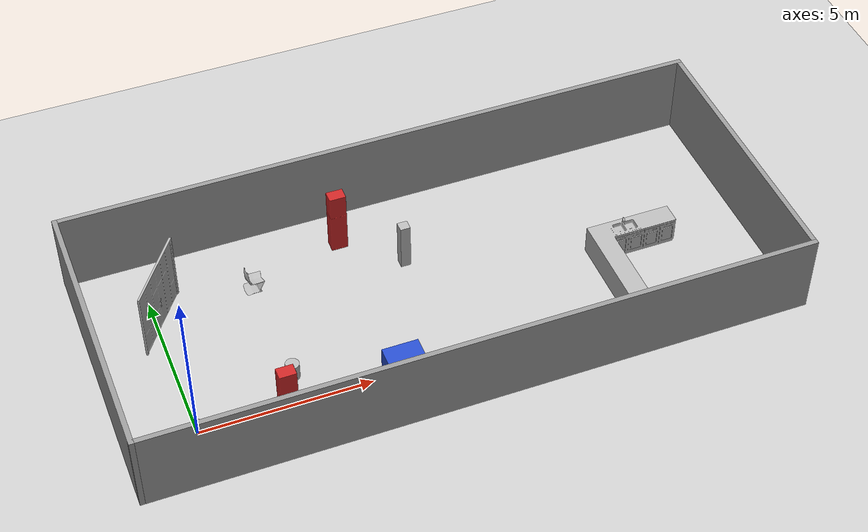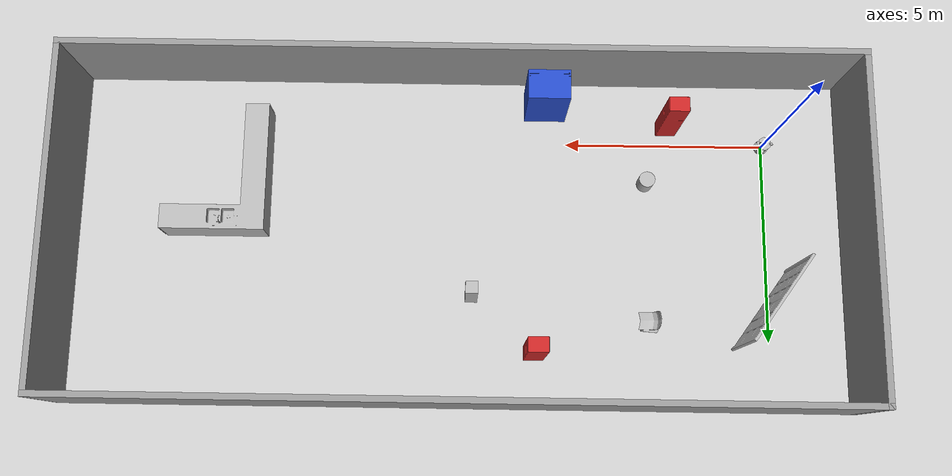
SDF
<sdf version="1.6">
 <world name="default">
  <light name="sun" type="directional">
   <pose>0 0 10 0 -0 0</pose>
   <diffuse>0.8 0.8 0.8 1</diffuse>
   <specular>0.2 0.2 0.2 1</specular>
   <attenuation>
    <range>1000</range>
    <constant>0.9</constant>
    <linear>0.01</linear>
    <quadratic>0.001</quadratic>
   </attenuation>
   <direction>-0.5 0.1 -0.9</direction>
  </light>
  <model name="ground_plane">
   <static>1</static>
   <link name="link">
    <collision name="collision">
     <geometry><plane><normal>0 0 1</normal><size>100 100</size></plane></geometry>
     <surface><friction><ode><mu>100</mu><mu2>50</mu2></ode></friction></surface>
    </collision>
    <visual name="visual">
     <cast_shadows>0</cast_shadows>
     <geometry><plane><normal>0 0 1</normal><size>100 100</size></plane></geometry>
     <material>
      <script><uri>file://media/materials/scripts/gazebo.material</uri><name>Gazebo/Grey</name></script>
     </material>
    </visual>
   </link>
  </model>
  <gravity>0 0 -9.8</gravity>
  <magnetic_field>6e-06 2.3e-05 -4.2e-05</magnetic_field>
  <atmosphere type="adiabatic"/>
  <physics name="default_physics" default="0" type="ode">
   <max_step_size>0.001</max_step_size>
   <real_time_factor>1</real_time_factor>
   <real_time_update_rate>1000</real_time_update_rate>
  </physics>
  <scene><ambient>0.4 0.4 0.4 1</ambient><background>0.7 0.7 0.7 1</background><shadows>1</shadows></scene>
  <audio><device>default</device></audio>
  <spherical_coordinates>
   <surface_model>EARTH_WGS84</surface_model>
   <latitude_deg>0</latitude_deg>
   <longitude_deg>0</longitude_deg>
   <elevation>0</elevation>
   <heading_deg>0</heading_deg>
  </spherical_coordinates>
  <model name="Untitled">
   <pose>7.69646 2.48369 0 0 -0 0</pose>
   <link name="Wall_4">
    <collision name="Wall_4_Collision">
     <geometry><box><size>19.5 0.15 2.5</size></box></geometry>
     <pose>0 0 1.25 0 -0 0</pose>
    </collision>
    <visual name="Wall_4_Visual">
     <pose>0 0 1.25 0 -0 0</pose>
     <geometry><box><size>19.5 0.15 2.5</size></box></geometry>
     <material>
      <script><uri>file://media/materials/scripts/gazebo.material</uri><name>Gazebo/Grey</name></script>
      <ambient>1 1 1 1</ambient>
     </material>
     <meta><layer>0</layer></meta>
    </visual>
    <pose>-0 4.175 0 0 -0 0</pose>
   </link>
   <link name="Wall_5">
    <collision name="Wall_5_Collision">
     <geometry><box><size>8.5 0.15 2.5</size></box></geometry>
     <pose>0 0 1.25 0 -0 0</pose>
    </collision>
    <visual name="Wall_5_Visual">
     <pose>0 0 1.25 0 -0 0</pose>
     <geometry><box><size>8.5 0.15 2.5</size></box></geometry>
     <material>
      <script><uri>file://media/materials/scripts/gazebo.material</uri><name>Gazebo/Grey</name></script>
      <ambient>1 1 1 1</ambient>
     </material>
     <meta><layer>0</layer></meta>
    </visual>
    <pose>9.675 0 0 0 -0 -1.5708</pose>
   </link>
   <link name="Wall_6">
    <collision name="Wall_6_Collision">
     <geometry><box><size>19.5 0.15 2.5</size></box></geometry>
     <pose>0 0 1.25 0 -0 0</pose>
    </collision>
    <visual name="Wall_6_Visual">
     <pose>0 0 1.25 0 -0 0</pose>
     <geometry><box><size>19.5 0.15 2.5</size></box></geometry>
     <material>
      <script><uri>file://media/materials/scripts/gazebo.material</uri><name>Gazebo/Grey</name></script>
      <ambient>1 1 1 1</ambient>
     </material>
     <meta><layer>0</layer></meta>
    </visual>
    <pose>-0 -4.175 0 0 -0 3.14159</pose>
   </link>
   <link name="Wall_7">
    <collision name="Wall_7_Collision">
     <geometry><box><size>8.5 0.15 2.5</size></box></geometry>
     <pose>0 0 1.25 0 -0 0</pose>
    </collision>
    <visual name="Wall_7_Visual">
     <pose>0 0 1.25 0 -0 0</pose>
     <geometry><box><size>8.5 0.15 2.5</size></box></geometry>
     <material>
      <script><uri>file://media/materials/scripts/gazebo.material</uri><name>Gazebo/Grey</name></script>
      <ambient>1 1 1 1</ambient>
     </material>
     <meta><layer>0</layer></meta>
    </visual>
    <pose>-9.675 0 0 0 -0 1.5708</pose>
   </link>
   <static>1</static>
  </model>
  <model name="box">
   <pose>7.38 3.95764 0.751941 -0.001386 -0.004703 -0.001482</pose>
   <link name="link">
    <collision name="collision"><geometry><box><size>0.3 0.3 1.5</size></box></geometry></collision>
    <visual name="visual"><geometry><box><size>0.3 0.3 1.5</size></box></geometry></visual>
    <inertial>
     <inertia><ixx>1</ixx><ixy>0</ixy><ixz>0</ixz><iyy>1</iyy><iyz>0</iyz><izz>1</izz></inertia>
     <mass>1</mass>
    </inertial>
   </link>
   <plugin name="push_animate2" filename="libsquare_box2.so"/>
  </model>
  <model name="cylinder">
   <pose>3 1 0 0 -0 0</pose>
   <link name="link">
    <collision name="collision">
     <geometry><cylinder><radius>0.2</radius><length>1</length></cylinder></geometry>
    </collision>
    <visual name="visual">
     <geometry><cylinder><radius>0.2</radius><length>1</length></cylinder></geometry>
    </visual>
    <inertial>
     <inertia><ixx>1</ixx><ixy>0</ixy><ixz>0</ixz><iyy>1</iyy><iyz>0</iyz><izz>1</izz></inertia>
     <mass>1</mass>
    </inertial>
   </link>
   <plugin name="push_animate3" filename="libsquare_box3.so"/>
  </model>
  <model name="cylinder">
   <pose>3 1 0 0 -0 0</pose>
   <link name="link">
    <collision name="collision">
     <geometry><cylinder><radius>0.2</radius><length>1</length></cylinder></geometry>
    </collision>
    <visual name="visual">
     <geometry><cylinder><radius>0.2</radius><length>1</length></cylinder></geometry>
    </visual>
    <inertial>
     <inertia><ixx>1</ixx><ixy>0</ixy><ixz>0</ixz><iyy>1</iyy><iyz>0</iyz><izz>1</izz></inertia>
     <mass>1</mass>
    </inertial>
   </link>
   <plugin name="push_animate4" filename="libsquare_box4.so"/>
  </model>
  <model name="box">
   <pose>7.38 3.95764 0.751941 -0.001386 -0.004703 -0.001482</pose>
   <link name="link">
    <collision name="collision"><geometry><box><size>0.3 0.3 1.5</size></box></geometry></collision>
    <visual name="visual"><geometry><box><size>0.3 0.3 1.5</size></box></geometry></visual>
    <inertial>
     <inertia><ixx>1</ixx><ixy>0</ixy><ixz>0</ixz><iyy>1</iyy><iyz>0</iyz><izz>1</izz></inertia>
     <mass>1</mass>
    </inertial>
   </link>
   <plugin name="push_animate" filename="libsquare_box.so"/>
  </model>
  <model name="aws_robomaker_residential_ChairD_01">
   <link name="link">
    <inertial>
     <mass>4.5</mass>
     <inertia><ixy>0</ixy><ixz>0</ixz><iyz>0</iyz><ixx>0.217</ixx><iyy>0.217</iyy><izz>0.067</izz></inertia>
    </inertial>
    <collision name="collision">
     <geometry>
      <mesh>
       <uri>model://aws_robomaker_residential_ChairD_01/meshes/aws_ChairD_01_collision.DAE</uri>
       <scale>1 1 1</scale>
      </mesh>
     </geometry>
    </collision>
    <visual name="visual">
     <geometry>
      <mesh><uri>model://aws_robomaker_residential_ChairD_01/meshes/aws_ChairD_01_visual.DAE</uri></mesh>
     </geometry>
     <meta><layer>1</layer></meta>
    </visual>
   </link>
   <pose>2.98831 4.55609 -0.000251 -1.6e-05 0.000984 -1e-05</pose>
  </model>
  <model name="aws_robomaker_residential_Refrigerator_01">
   <link name="link">
    <inertial><mass>1</mass></inertial>
    <collision name="collision">
     <geometry>
      <mesh>
       <uri>model://aws_robomaker_residential_Refrigerator_01/meshes/aws_Refrigerator_01_collision.DAE</uri>
       <scale>1 1 1</scale>
      </mesh>
     </geometry>
    </collision>
    <visual name="visual">
     <geometry>
      <mesh>
       <uri>model://aws_robomaker_residential_Refrigerator_01/meshes/aws_Refrigerator_01_visual.DAE</uri>
      </mesh>
     </geometry>
     <material>
      <script><uri>file://media/materials/scripts/gazebo.material</uri><name>Gazebo/Blue</name></script>
     </material>
     <meta><layer>1</layer></meta>
    </visual>
   </link>
   <static>1</static>
   <pose>5.55201 -1.02173 0 0 -0 0</pose>
  </model>
  <model name="aws_robomaker_residential_AirconditionerB_01">
   <link name="link">
    <inertial>
     <mass>1</mass>
     <inertia><ixx>1</ixx><ixy>0</ixy><ixz>0</ixz><iyy>1</iyy><iyz>0</iyz><izz>1</izz></inertia>
    </inertial>
    <collision name="collision">
     <geometry>
      <mesh>
       <uri>model://aws_robomaker_residential_AirconditionerB_01/meshes/aws_AirconditionerB_01_collision.DAE</uri>
       <scale>1 1 1</scale>
      </mesh>
     </geometry>
    </collision>
    <visual name="visual">
     <geometry>
      <mesh>
       <uri>model://aws_robomaker_residential_AirconditionerB_01/meshes/aws_AirconditionerB_01_visual.DAE</uri>
      </mesh>
     </geometry>
     <material>
      <script><uri>file://media/materials/scripts/gazebo.material</uri><name>Gazebo/Red</name></script>
     </material>
     <meta><layer>1</layer></meta>
    </visual>
   </link>
   <pose>2.43561 -0.477619 0.003476 0 -1e-06 0</pose>
  </model>
  <model name="aws_robomaker_residential_KitchenCabinet_01">
   <link name="link">
    <inertial><mass>1</mass></inertial>
    <collision name="collision">
     <geometry>
      <mesh>
       <uri>model://aws_robomaker_residential_KitchenCabinet_01/meshes/aws_KitchenCabinet_01_collision.DAE</uri>
       <scale>1 1 1</scale>
      </mesh>
     </geometry>
    </collision>
    <visual name="visual">
     <geometry>
      <mesh>
       <uri>model://aws_robomaker_residential_KitchenCabinet_01/meshes/aws_KitchenCabinet_01_visual.DAE</uri>
      </mesh>
     </geometry>
     <meta><layer>1</layer></meta>
    </visual>
   </link>
   <static>1</static>
   <pose>13.7907 0.897365 0 0 -0 0</pose>
  </model>
  <model name="aws_robomaker_residential_AirconditionerB_01_clone">
   <link name="link">
    <inertial>
     <mass>1</mass>
     <inertia><ixx>1</ixx><ixy>0</ixy><ixz>0</ixz><iyy>1</iyy><iyz>0</iyz><izz>1</izz></inertia>
    </inertial>
    <collision name="collision">
     <geometry>
      <mesh>
       <uri>model://aws_robomaker_residential_AirconditionerB_01/meshes/aws_AirconditionerB_01_collision.DAE</uri>
       <scale>1 1 1</scale>
      </mesh>
     </geometry>
    </collision>
    <visual name="visual">
     <geometry>
      <mesh>
       <uri>model://aws_robomaker_residential_AirconditionerB_01/meshes/aws_AirconditionerB_01_visual.DAE</uri>
      </mesh>
     </geometry>
     <material>
      <script><uri>file://media/materials/scripts/gazebo.material</uri><name>Gazebo/Red</name></script>
     </material>
     <meta><layer>1</layer></meta>
    </visual>
   </link>
   <pose>5.82843 5.34499 0.003484 0 1e-06 0</pose>
  </model>
  <model name="aws_robomaker_residential_FoldingDoor_01">
   <link name="link">
    <inertial><mass>1</mass></inertial>
    <collision name="collision">
     <geometry>
      <mesh>
       <uri>model://aws_robomaker_residential_FoldingDoor_01/meshes/aws_FoldingDoor_01_collision.DAE</uri>
       <scale>1 1 1</scale>
      </mesh>
     </geometry>
    </collision>
    <visual name="visual">
     <geometry>
      <mesh><uri>model://aws_robomaker_residential_FoldingDoor_01/meshes/aws_FoldingDoor_01_visual.DAE</uri></mesh>
     </geometry>
     <meta><layer>2</layer></meta>
    </visual>
   </link>
   <static>1</static>
   <pose>0.186484 4.19074 0 0 0 -0.620136</pose>
  </model>
  <model name="mobile_base">
   <link name="base_footprint">
    <inertial>
     <pose>-0.009496 1.3e-05 0.135573 0 -0 0</pose>
     <mass>4.92131</mass>
     <inertia>
      <ixx>0.142131</ixx>
      <ixy>-4.09256e-06</ixy>
      <ixz>0.0154896</ixz>
      <iyy>0.140786</iyy>
      <iyz>6.52075e-06</iyz>
      <izz>0.0801082</izz>
     </inertia>
    </inertial>
    <collision name="base_footprint_fixed_joint_lump__base_collision">
     <pose>0 0 0.06969 0 -0 0</pose>
     <geometry><cylinder><length>0.10938</length><radius>0.178</radius></cylinder></geometry>
    </collision>
    <collision name="base_footprint_fixed_joint_lump__camera_link_collision_1">
     <pose>-0.118 0 0.2812 0 -0 0</pose>
     <geometry><box><size>0.07271 0.27794 0.073</size></box></geometry>
    </collision>
    <collision name="base_footprint_fixed_joint_lump__caster_back_link_collision_2">
     <pose>-0.135 0 0.0192 -1.5708 0 0</pose>
     <geometry><cylinder><length>0.0176</length><radius>0.017</radius></cylinder></geometry>
     <surface>
      <contact><ode><kp>1e+06</kp><kd>100</kd><max_vel>1</max_vel><min_depth>0.001</min_depth></ode></contact>
      <friction><ode><mu>0</mu><mu2>0</mu2></ode></friction>
     </surface>
    </collision>
    <collision name="base_footprint_fixed_joint_lump__caster_front_link_collision_3">
     <pose>0.115 0 0.0172 -1.5708 0 0</pose>
     <geometry><cylinder><length>0.0176</length><radius>0.017</radius></cylinder></geometry>
     <surface>
      <contact><ode><kp>1e+06</kp><kd>100</kd><max_vel>1</max_vel><min_depth>0.001</min_depth></ode></contact>
      <friction><ode><mu>0</mu><mu2>0</mu2></ode></friction>
     </surface>
    </collision>
    <collision name="base_footprint_fixed_joint_lump__hokuyo_link_collision_4">
     <pose>0.1 0 0.4452 0 -0 0</pose>
     <geometry><box><size>0.1 0.1 0.1</size></box></geometry>
    </collision>
    <collision name="base_footprint_fixed_joint_lump__plate_bottom_link_collision_5">
     <pose>0 0 0.1408 0 -0 0</pose>
     <geometry><cylinder><length>0.006</length><radius>0.17</radius></cylinder></geometry>
    </collision>
    <collision name="base_footprint_fixed_joint_lump__plate_middle_link_collision_6">
     <pose>0 0 0.1976 0 -0 0</pose>
     <geometry><cylinder><length>0.006</length><radius>0.17</radius></cylinder></geometry>
    </collision>
    <collision name="base_footprint_fixed_joint_lump__plate_top_link_collision_7">
     <pose>0 0 0.4068 0 -0 0</pose>
     <geometry><cylinder><length>0.006</length><radius>0.17</radius></cylinder></geometry>
    </collision>
    <collision name="base_footprint_fixed_joint_lump__pole_bottom_0_link_collision_8">
     <pose>0.12 0.082 0.113 0 -0 0</pose>
     <geometry><cylinder><length>0.0492</length><radius>0.006</radius></cylinder></geometry>
    </collision>
    <collision name="base_footprint_fixed_joint_lump__pole_bottom_1_link_collision_9">
     <pose>0.055 0.12 0.113 0 -0 0</pose>
     <geometry><cylinder><length>0.0492</length><radius>0.006</radius></cylinder></geometry>
    </collision>
    <collision name="base_footprint_fixed_joint_lump__pole_bottom_2_link_collision_10">
     <pose>-0.055 0.12 0.113 0 -0 0</pose>
     <geometry><cylinder><length>0.0492</length><radius>0.006</radius></cylinder></geometry>
    </collision>
    <collision name="base_footprint_fixed_joint_lump__pole_bottom_3_link_collision_11">
     <pose>0.12 -0.082 0.113 0 -0 0</pose>
     <geometry><cylinder><length>0.0492</length><radius>0.006</radius></cylinder></geometry>
    </collision>
    <collision name="base_footprint_fixed_joint_lump__pole_bottom_4_link_collision_12">
     <pose>0.055 -0.12 0.113 0 -0 0</pose>
     <geometry><cylinder><length>0.0492</length><radius>0.006</radius></cylinder></geometry>
    </collision>
    <collision name="base_footprint_fixed_joint_lump__pole_bottom_5_link_collision_13">
     <pose>-0.055 -0.12 0.113 0 -0 0</pose>
     <geometry><cylinder><length>0.0492</length><radius>0.006</radius></cylinder></geometry>
    </collision>
    <collision name="base_footprint_fixed_joint_lump__pole_kinect_0_link_collision_14">
     <pose>-0.1024 0.098 0.2474 0 -0 0</pose>
     <geometry><cylinder><length>0.0936</length><radius>0.006</radius></cylinder></geometry>
    </collision>
    <collision name="base_footprint_fixed_joint_lump__pole_kinect_1_link_collision_15">
     <pose>-0.1024 -0.098 0.2474 0 -0 0</pose>
     <geometry><cylinder><length>0.0936</length><radius>0.006</radius></cylinder></geometry>
    </collision>
    <collision name="base_footprint_fixed_joint_lump__pole_middle_0_link_collision_16">
     <pose>0.0381 0.1505 0.1742 0 -0 0</pose>
     <geometry><cylinder><length>0.0608</length><radius>0.006</radius></cylinder></geometry>
    </collision>
    <collision name="base_footprint_fixed_joint_lump__pole_middle_1_link_collision_17">
     <pose>0.0381 -0.1505 0.1742 0 -0 0</pose>
     <geometry><cylinder><length>0.0608</length><radius>0.006</radius></cylinder></geometry>
    </collision>
    <collision name="base_footprint_fixed_joint_lump__pole_middle_2_link_collision_18">
     <pose>-0.0381 0.1505 0.1742 0 -0 0</pose>
     <geometry><cylinder><length>0.0608</length><radius>0.006</radius></cylinder></geometry>
    </collision>
    <collision name="base_footprint_fixed_joint_lump__pole_middle_3_link_collision_19">
     <pose>-0.0381 -0.1505 0.1742 0 -0 0</pose>
     <geometry><cylinder><length>0.0608</length><radius>0.006</radius></cylinder></geometry>
    </collision>
    <collision name="base_footprint_fixed_joint_lump__pole_top_0_link_collision_20">
     <pose>0.0381 0.1505 0.3022 0 -0 0</pose>
     <geometry><cylinder><length>0.2032</length><radius>0.006</radius></cylinder></geometry>
    </collision>
    <collision name="base_footprint_fixed_joint_lump__pole_top_1_link_collision_21">
     <pose>0.0381 -0.1505 0.3022 0 -0 0</pose>
     <geometry><cylinder><length>0.2032</length><radius>0.006</radius></cylinder></geometry>
    </collision>
    <collision name="base_footprint_fixed_joint_lump__pole_top_2_link_collision_22">
     <pose>-0.0381 0.1505 0.3022 0 -0 0</pose>
     <geometry><cylinder><length>0.2032</length><radius>0.006</radius></cylinder></geometry>
    </collision>
    <collision name="base_footprint_fixed_joint_lump__pole_top_3_link_collision_23">
     <pose>-0.0381 -0.1505 0.3022 0 -0 0</pose>
     <geometry><cylinder><length>0.2032</length><radius>0.006</radius></cylinder></geometry>
    </collision>
    <visual name="base_footprint_fixed_joint_lump__base_link_visual">
     <pose>0.001 0 0.06219 0 -0 0</pose>
     <geometry>
      <mesh>
       <scale>1 1 1</scale>
       <uri>/home/chenyuheng/turtlebot_ws/src/kobuki_description/meshes/main_body.dae</uri>
      </mesh>
     </geometry>
     <material><script><uri>__default__</uri><name>__default__</name></script></material>
    </visual>
    <visual name="base_footprint_fixed_joint_lump__camera_link_visual_1">
     <pose>-0.118 0 0.2812 0 -0 1.5708</pose>
     <geometry>
      <mesh>
       <scale>1 1 1</scale>
       <uri>/home/chenyuheng/turtlebot_ws/src/turtlebot/turtlebot_description/meshes/sensors/kinect.dae</uri>
      </mesh>
     </geometry>
     <material><script><uri>__default__</uri><name>__default__</name></script></material>
    </visual>
    <visual name="base_footprint_fixed_joint_lump__hokuyo_link_visual_2">
     <pose>0.1 0 0.4452 0 -0 0</pose>
     <geometry>
      <mesh>
       <scale>1 1 1</scale>
       <uri>/home/chenyuheng/turtlebot_ws/src/turtlebot/turtlebot_description/meshes/sensors/hokuyo.dae</uri>
      </mesh>
     </geometry>
     <material><script><uri>__default__</uri><name>__default__</name></script></material>
    </visual>
    <visual name="base_footprint_fixed_joint_lump__plate_bottom_link_visual_3">
     <pose>0.02364 0 0.1408 0 -0 0</pose>
     <geometry>
      <mesh>
       <scale>1 1 1</scale>
       <uri>/home/chenyuheng/turtlebot_ws/src/turtlebot/turtlebot_description/meshes/stacks/hexagons/plate_bottom.dae</uri>
      </mesh>
     </geometry>
    </visual>
    <visual name="base_footprint_fixed_joint_lump__plate_middle_link_visual_4">
     <pose>-0.01364 0 0.1976 0 -0 0</pose>
     <geometry>
      <mesh>
       <scale>1 1 1</scale>
       <uri>/home/chenyuheng/turtlebot_ws/src/turtlebot/turtlebot_description/meshes/stacks/hexagons/plate_middle.dae</uri>
      </mesh>
     </geometry>
    </visual>
    <visual name="base_footprint_fixed_joint_lump__plate_top_link_visual_5">
     <pose>-0.01364 0 0.4068 0 -0 0</pose>
     <geometry>
      <mesh>
       <scale>1 1 1</scale>
       <uri>/home/chenyuheng/turtlebot_ws/src/turtlebot/turtlebot_description/meshes/stacks/hexagons/plate_top.dae</uri>
      </mesh>
     </geometry>
    </visual>
    <visual name="base_footprint_fixed_joint_lump__pole_bottom_0_link_visual_6">
     <pose>0.12 0.082 0.113 0 -0 0</pose>
     <geometry>
      <mesh>
       <scale>1 1 1</scale>
       <uri>/home/chenyuheng/turtlebot_ws/src/turtlebot/turtlebot_description/meshes/stacks/hexagons/pole_bottom.dae</uri>
      </mesh>
     </geometry>
    </visual>
    <visual name="base_footprint_fixed_joint_lump__pole_bottom_1_link_visual_7">
     <pose>0.055 0.12 0.113 0 -0 0</pose>
     <geometry>
      <mesh>
       <scale>1 1 1</scale>
       <uri>/home/chenyuheng/turtlebot_ws/src/turtlebot/turtlebot_description/meshes/stacks/hexagons/pole_bottom.dae</uri>
      </mesh>
     </geometry>
    </visual>
    <visual name="base_footprint_fixed_joint_lump__pole_bottom_2_link_visual_8">
     <pose>-0.055 0.12 0.113 0 -0 0</pose>
     <geometry>
      <mesh>
       <scale>1 1 1</scale>
       <uri>/home/chenyuheng/turtlebot_ws/src/turtlebot/turtlebot_description/meshes/stacks/hexagons/pole_bottom.dae</uri>
      </mesh>
     </geometry>
    </visual>
    <visual name="base_footprint_fixed_joint_lump__pole_bottom_3_link_visual_9">
     <pose>0.12 -0.082 0.113 0 -0 0</pose>
     <geometry>
      <mesh>
       <scale>1 1 1</scale>
       <uri>/home/chenyuheng/turtlebot_ws/src/turtlebot/turtlebot_description/meshes/stacks/hexagons/pole_bottom.dae</uri>
      </mesh>
     </geometry>
    </visual>
    <visual name="base_footprint_fixed_joint_lump__pole_bottom_4_link_visual_10">
     <pose>0.055 -0.12 0.113 0 -0 0</pose>
     <geometry>
      <mesh>
       <scale>1 1 1</scale>
       <uri>/home/chenyuheng/turtlebot_ws/src/turtlebot/turtlebot_description/meshes/stacks/hexagons/pole_bottom.dae</uri>
      </mesh>
     </geometry>
    </visual>
    <visual name="base_footprint_fixed_joint_lump__pole_bottom_5_link_visual_11">
     <pose>-0.055 -0.12 0.113 0 -0 0</pose>
     <geometry>
      <mesh>
       <scale>1 1 1</scale>
       <uri>/home/chenyuheng/turtlebot_ws/src/turtlebot/turtlebot_description/meshes/stacks/hexagons/pole_bottom.dae</uri>
      </mesh>
     </geometry>
    </visual>
    <visual name="base_footprint_fixed_joint_lump__pole_kinect_0_link_visual_12">
     <pose>-0.1024 0.098 0.2474 0 -0 0</pose>
     <geometry>
      <mesh>
       <scale>1 1 1</scale>
       <uri>/home/chenyuheng/turtlebot_ws/src/turtlebot/turtlebot_description/meshes/stacks/hexagons/pole_kinect.dae</uri>
      </mesh>
     </geometry>
    </visual>
    <visual name="base_footprint_fixed_joint_lump__pole_kinect_1_link_visual_13">
     <pose>-0.1024 -0.098 0.2474 0 -0 0</pose>
     <geometry>
      <mesh>
       <scale>1 1 1</scale>
       <uri>/home/chenyuheng/turtlebot_ws/src/turtlebot/turtlebot_description/meshes/stacks/hexagons/pole_kinect.dae</uri>
      </mesh>
     </geometry>
    </visual>
    <visual name="base_footprint_fixed_joint_lump__pole_middle_0_link_visual_14">
     <pose>0.0381 0.1505 0.1742 3.14159 -0 3.14159</pose>
     <geometry>
      <mesh>
       <scale>1 1 1</scale>
       <uri>/home/chenyuheng/turtlebot_ws/src/turtlebot/turtlebot_description/meshes/stacks/hexagons/pole_middle.dae</uri>
      </mesh>
     </geometry>
    </visual>
    <visual name="base_footprint_fixed_joint_lump__pole_middle_1_link_visual_15">
     <pose>0.0381 -0.1505 0.1742 3.14159 -0 3.14159</pose>
     <geometry>
      <mesh>
       <scale>1 1 1</scale>
       <uri>/home/chenyuheng/turtlebot_ws/src/turtlebot/turtlebot_description/meshes/stacks/hexagons/pole_middle.dae</uri>
      </mesh>
     </geometry>
    </visual>
    <visual name="base_footprint_fixed_joint_lump__pole_middle_2_link_visual_16">
     <pose>-0.0381 0.1505 0.1742 3.14159 -0 3.14159</pose>
     <geometry>
      <mesh>
       <scale>1 1 1</scale>
       <uri>/home/chenyuheng/turtlebot_ws/src/turtlebot/turtlebot_description/meshes/stacks/hexagons/pole_middle.dae</uri>
      </mesh>
     </geometry>
    </visual>
    <visual name="base_footprint_fixed_joint_lump__pole_middle_3_link_visual_17">
     <pose>-0.0381 -0.1505 0.1742 3.14159 -0 3.14159</pose>
     <geometry>
      <mesh>
       <scale>1 1 1</scale>
       <uri>/home/chenyuheng/turtlebot_ws/src/turtlebot/turtlebot_description/meshes/stacks/hexagons/pole_middle.dae</uri>
      </mesh>
     </geometry>
    </visual>
    <visual name="base_footprint_fixed_joint_lump__pole_top_0_link_visual_18">
     <pose>0.0381 0.1505 0.3022 0 -0 0</pose>
     <geometry>
      <mesh>
       <scale>1 1 1</scale>
       <uri>/home/chenyuheng/turtlebot_ws/src/turtlebot/turtlebot_description/meshes/stacks/hexagons/pole_top.dae</uri>
      </mesh>
     </geometry>
    </visual>
    <visual name="base_footprint_fixed_joint_lump__pole_top_1_link_visual_19">
     <pose>0.0381 -0.1505 0.3022 0 -0 0</pose>
     <geometry>
      <mesh>
       <scale>1 1 1</scale>
       <uri>/home/chenyuheng/turtlebot_ws/src/turtlebot/turtlebot_description/meshes/stacks/hexagons/pole_top.dae</uri>
      </mesh>
     </geometry>
    </visual>
    <visual name="base_footprint_fixed_joint_lump__pole_top_2_link_visual_20">
     <pose>-0.0381 0.1505 0.3022 0 -0 0</pose>
     <geometry>
      <mesh>
       <scale>1 1 1</scale>
       <uri>/home/chenyuheng/turtlebot_ws/src/turtlebot/turtlebot_description/meshes/stacks/hexagons/pole_top.dae</uri>
      </mesh>
     </geometry>
    </visual>
    <visual name="base_footprint_fixed_joint_lump__pole_top_3_link_visual_21">
     <pose>-0.0381 -0.1505 0.3022 0 -0 0</pose>
     <geometry>
      <mesh>
       <scale>1 1 1</scale>
       <uri>/home/chenyuheng/turtlebot_ws/src/turtlebot/turtlebot_description/meshes/stacks/hexagons/pole_top.dae</uri>
      </mesh>
     </geometry>
    </visual>
    <sensor name="bumpers" type="contact">
     <always_on>1</always_on>
     <update_rate>50</update_rate>
     <visualize>1</visualize>
     <contact>
      <collision>base_footprint_fixed_joint_lump__base_collision</collision>
      <topic>__default_topic__</topic>
     </contact>
     <pose>0 0 0.0102 0 -0 0</pose>
    </sensor>
    <sensor name="camera" type="depth">
     <always_on>1</always_on>
     <update_rate>20</update_rate>
     <camera name="__default__">
      <horizontal_fov>1.0472</horizontal_fov>
      <image><format>B8G8R8</format><width>640</width><height>480</height></image>
      <clip><near>0.05</near><far>8</far></clip>
     </camera>
     <plugin name="kinect_camera_controller" filename="libgazebo_ros_openni_kinect.so">
      <cameraName>camera</cameraName>
      <alwaysOn>1</alwaysOn>
      <updateRate>10</updateRate>
      <imageTopicName>rgb/image_raw</imageTopicName>
      <depthImageTopicName>depth/image_raw</depthImageTopicName>
      <pointCloudTopicName>depth/points</pointCloudTopicName>
      <cameraInfoTopicName>rgb/camera_info</cameraInfoTopicName>
      <depthImageCameraInfoTopicName>depth/camera_info</depthImageCameraInfoTopicName>
      <frameName>camera_depth_optical_frame</frameName>
      <baseline>0.1</baseline>
      <distortion_k1>0.0</distortion_k1>
      <distortion_k2>0.0</distortion_k2>
      <distortion_k3>0.0</distortion_k3>
      <distortion_t1>0.0</distortion_t1>
      <distortion_t2>0.0</distortion_t2>
      <pointCloudCutoff>0.4</pointCloudCutoff>
      <robotNamespace>/</robotNamespace>
     </plugin>
     <pose>-0.118 0 0.2812 0 -0 0</pose>
    </sensor>
    <sensor name="cliff_sensor_front" type="ray">
     <always_on>1</always_on>
     <update_rate>50</update_rate>
     <visualize>1</visualize>
     <ray>
      <scan>
       <horizontal>
        <samples>50</samples>
        <resolution>1</resolution>
        <min_angle>-0.0436</min_angle>
        <max_angle>0.0436</max_angle>
       </horizontal>
       <vertical><samples>1</samples><min_angle>0</min_angle><max_angle>0</max_angle></vertical>
      </scan>
      <range><min>0.01</min><max>0.15</max><resolution>1</resolution></range>
     </ray>
     <pose>0.156 0 0.0316 3.14159 1.57079 3.14159</pose>
    </sensor>
    <sensor name="cliff_sensor_left" type="ray">
     <always_on>1</always_on>
     <update_rate>50</update_rate>
     <visualize>1</visualize>
     <ray>
      <scan>
       <horizontal>
        <samples>50</samples>
        <resolution>1</resolution>
        <min_angle>-0.0436</min_angle>
        <max_angle>0.0436</max_angle>
       </horizontal>
       <vertical><samples>1</samples><min_angle>0</min_angle><max_angle>0</max_angle></vertical>
      </scan>
      <range><min>0.01</min><max>0.15</max><resolution>1</resolution></range>
     </ray>
     <pose>0.08734 0.13601 0.0316 3.14159 1.57079 3.14159</pose>
    </sensor>
    <sensor name="cliff_sensor_right" type="ray">
     <always_on>1</always_on>
     <update_rate>50</update_rate>
     <visualize>1</visualize>
     <ray>
      <scan>
       <horizontal>
        <samples>50</samples>
        <resolution>1</resolution>
        <min_angle>-0.0436</min_angle>
        <max_angle>0.0436</max_angle>
       </horizontal>
       <vertical><samples>1</samples><min_angle>0</min_angle><max_angle>0</max_angle></vertical>
      </scan>
      <range><min>0.01</min><max>0.15</max><resolution>1</resolution></range>
     </ray>
     <pose>0.085 -0.13601 0.0316 3.14159 1.57079 3.14159</pose>
    </sensor>
    <sensor name="imu" type="imu">
     <always_on>1</always_on>
     <update_rate>50</update_rate>
     <visualize>0</visualize>
     <imu>
      <angular_velocity>
       <x>
        <noise type="gaussian">
         <mean>0</mean>
         <stddev>1.96e-06</stddev>
         <bias_mean>0</bias_mean>
         <bias_stddev>0</bias_stddev>
        </noise>
       </x>
       <y>
        <noise type="gaussian">
         <mean>0</mean>
         <stddev>1.96e-06</stddev>
         <bias_mean>0</bias_mean>
         <bias_stddev>0</bias_stddev>
        </noise>
       </y>
       <z>
        <noise type="gaussian">
         <mean>0</mean>
         <stddev>1.96e-06</stddev>
         <bias_mean>0</bias_mean>
         <bias_stddev>0</bias_stddev>
        </noise>
       </z>
      </angular_velocity>
      <linear_acceleration>
       <x>
        <noise type="gaussian">
         <mean>0</mean>
         <stddev>0.017</stddev>
         <bias_mean>0.1</bias_mean>
         <bias_stddev>0.001</bias_stddev>
        </noise>
       </x>
       <y>
        <noise type="gaussian">
         <mean>0</mean>
         <stddev>0.017</stddev>
         <bias_mean>0.1</bias_mean>
         <bias_stddev>0.001</bias_stddev>
        </noise>
       </y>
       <z>
        <noise type="gaussian">
         <mean>0</mean>
         <stddev>0.017</stddev>
         <bias_mean>0.1</bias_mean>
         <bias_stddev>0.001</bias_stddev>
        </noise>
       </z>
      </linear_acceleration>
     </imu>
     <pose>0.056 0.062 0.0304 0 -0 0</pose>
    </sensor>
    <sensor name="head_hokuyo_sensor" type="ray">
     <visualize>0</visualize>
     <update_rate>40</update_rate>
     <ray>
      <scan>
       <horizontal>
        <samples>720</samples>
        <resolution>1</resolution>
        <min_angle>-1.5708</min_angle>
        <max_angle>1.5708</max_angle>
       </horizontal>
       <vertical><samples>1</samples><min_angle>0</min_angle><max_angle>0</max_angle></vertical>
      </scan>
      <range><min>0.1</min><max>30</max><resolution>0.01</resolution></range>
      <noise><type>gaussian</type><mean>0</mean><stddev>0.01</stddev></noise>
     </ray>
     <plugin name="gazebo_ros_head_hokuyo_controller" filename="libgazebo_ros_laser.so">
      <topicName>/turtlebot/laser/scan</topicName>
      <frameName>hokuyo_link</frameName>
      <robotNamespace>/</robotNamespace>
     </plugin>
     <pose>0.1 0 0.4452 0 -0 0</pose>
    </sensor>
   </link>
   <link name="wheel_left_link">
    <pose>0 0.115 0.0352 -1.5708 0 0</pose>
    <inertial>
     <mass>0.01</mass>
     <inertia><ixx>0.001</ixx><ixy>0</ixy><ixz>0</ixz><iyy>0.001</iyy><iyz>0</iyz><izz>0.001</izz></inertia>
    </inertial>
    <collision name="wheel_left_link_collision">
     <geometry><cylinder><length>0.0206</length><radius>0.035</radius></cylinder></geometry>
     <surface>
      <contact><ode><kp>1e+06</kp><kd>100</kd><max_vel>1</max_vel><min_depth>0.001</min_depth></ode></contact>
      <friction><ode><mu>1</mu><mu2>1</mu2></ode></friction>
     </surface>
    </collision>
    <visual name="wheel_left_link_visual">
     <geometry>
      <mesh>
       <scale>1 1 1</scale>
       <uri>/home/chenyuheng/turtlebot_ws/src/kobuki_description/meshes/wheel.dae</uri>
      </mesh>
     </geometry>
     <material><script><uri>__default__</uri><name>__default__</name></script></material>
    </visual>
   </link>
   <joint name="wheel_left_joint" type="revolute">
    <child>wheel_left_link</child>
    <parent>base_footprint</parent>
    <axis>
     <xyz>0 1 0</xyz>
     <limit><lower>-1e+16</lower><upper>1e+16</upper></limit>
     <dynamics><spring_reference>0</spring_reference><spring_stiffness>0</spring_stiffness></dynamics>
     <use_parent_model_frame>1</use_parent_model_frame>
    </axis>
   </joint>
   <link name="wheel_right_link">
    <pose>0 -0.115 0.0352 -1.5708 0 0</pose>
    <inertial>
     <mass>0.01</mass>
     <inertia><ixx>0.001</ixx><ixy>0</ixy><ixz>0</ixz><iyy>0.001</iyy><iyz>0</iyz><izz>0.001</izz></inertia>
    </inertial>
    <collision name="wheel_right_link_collision">
     <geometry><cylinder><length>0.0206</length><radius>0.035</radius></cylinder></geometry>
     <surface>
      <contact><ode><kp>1e+06</kp><kd>100</kd><max_vel>1</max_vel><min_depth>0.001</min_depth></ode></contact>
      <friction><ode><mu>1</mu><mu2>1</mu2></ode></friction>
     </surface>
    </collision>
    <visual name="wheel_right_link_visual">
     <geometry>
      <mesh>
       <scale>1 1 1</scale>
       <uri>/home/chenyuheng/turtlebot_ws/src/kobuki_description/meshes/wheel.dae</uri>
      </mesh>
     </geometry>
     <material><script><uri>__default__</uri><name>__default__</name></script></material>
    </visual>
   </link>
   <joint name="wheel_right_joint" type="revolute">
    <child>wheel_right_link</child>
    <parent>base_footprint</parent>
    <axis>
     <xyz>0 1 0</xyz>
     <limit><lower>-1e+16</lower><upper>1e+16</upper></limit>
     <dynamics><spring_reference>0</spring_reference><spring_stiffness>0</spring_stiffness></dynamics>
     <use_parent_model_frame>1</use_parent_model_frame>
    </axis>
   </joint>
   <static>0</static>
   <plugin name="kobuki_controller" filename="libgazebo_ros_kobuki.so">
    <publish_tf>1</publish_tf>
    <left_wheel_joint_name>wheel_left_joint</left_wheel_joint_name>
    <right_wheel_joint_name>wheel_right_joint</right_wheel_joint_name>
    <wheel_separation>.230</wheel_separation>
    <wheel_diameter>0.070</wheel_diameter>
    <torque>1.0</torque>
    <velocity_command_timeout>0.6</velocity_command_timeout>
    <cliff_sensor_left_name>cliff_sensor_left</cliff_sensor_left_name>
    <cliff_sensor_center_name>cliff_sensor_front</cliff_sensor_center_name>
    <cliff_sensor_right_name>cliff_sensor_right</cliff_sensor_right_name>
    <cliff_detection_threshold>0.04</cliff_detection_threshold>
    <bumper_name>bumpers</bumper_name>
    <imu_name>imu</imu_name>
    <robotNamespace>/</robotNamespace>
   </plugin>
   <pose>0.000786 0.000182 -0.000341 -8.1e-05 -0.013775 0.018573</pose>
  </model>
 </world>
</sdf>
